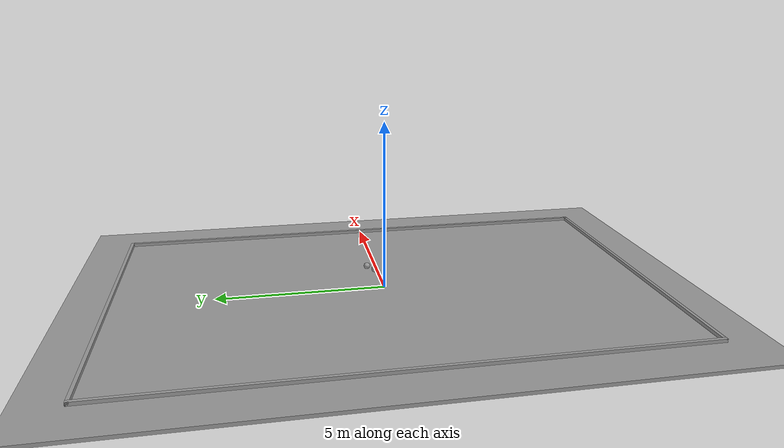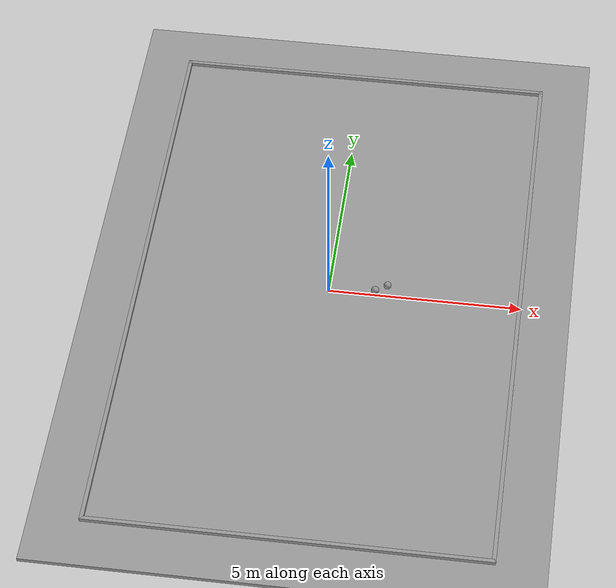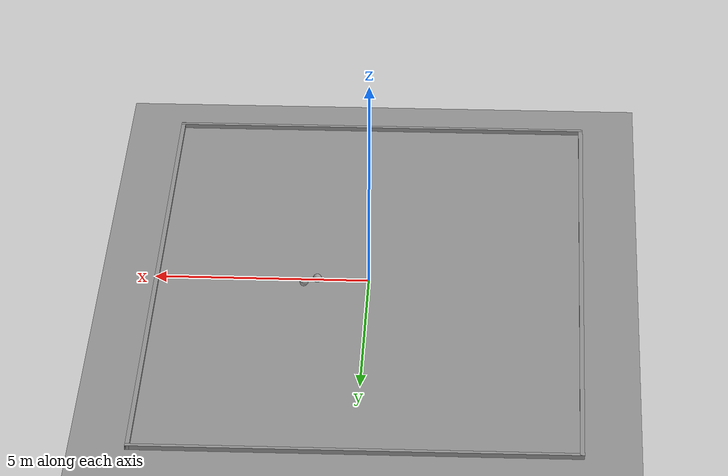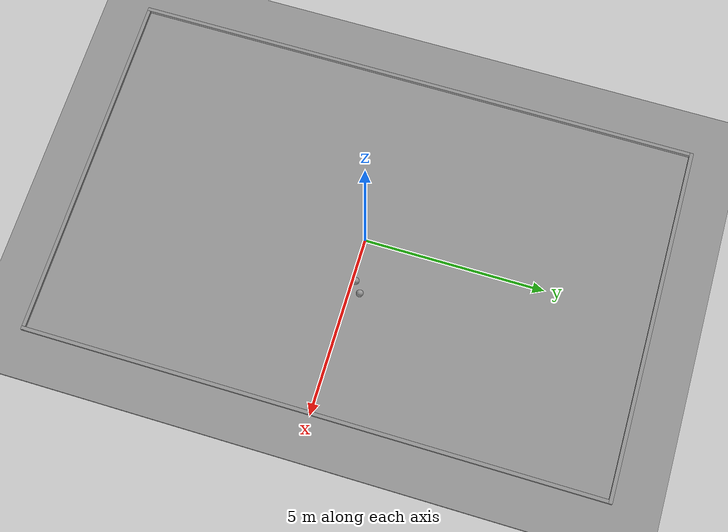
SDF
<sdf version='1.5'>
  <world name='room4'>
    <light name='sun' type='directional'>
      <cast_shadows>1</cast_shadows>
      <pose frame=''>0 0 10 0 -0 0</pose>
      <diffuse>0.8 0.8 0.8 1</diffuse>
      <specular>0.2 0.2 0.2 1</specular>
      <attenuation>
        <range>1000</range>
        <constant>0.9</constant>
        <linear>0.01</linear>
        <quadratic>0.001</quadratic>
      </attenuation>
      <direction>-0.5 0.1 -0.9</direction>
    </light>
    <physics name='default_physics' default='0' type='ode'>
      <max_step_size>0.001</max_step_size>
      <real_time_factor>1</real_time_factor>
      <real_time_update_rate>1000</real_time_update_rate>
      <gravity>0 0 -9.8</gravity>
      <magnetic_field>5.5645e-06 2.28758e-05 -4.23884e-05</magnetic_field>
    </physics>
    <scene>
      <ambient>0.4 0.4 0.4 1</ambient>
      <background>0.7 0.7 0.7 1</background>
      <shadows>1</shadows>
    </scene>
    <model name='floor'>
      <pose frame=''>0 0 -0.05 0 0 0</pose>
      <static>1</static>
      <link name='link'>
        <inertial>
          <mass>1</mass>
          <inertia>
            <ixx>1</ixx>
            <ixy>0</ixy>
            <ixz>0</ixz>
            <iyy>1</iyy>
            <iyz>0</iyz>
            <izz>1</izz>
          </inertia>
        </inertial>
        <collision name='collision'>
          <geometry>
            <box>
              <size>200 200 0.1</size>
            </box>
          </geometry>
          <max_contacts>10</max_contacts>
          <surface>
            <contact>
              <ode/>
            </contact>
            <bounce/>
            <friction>
              <ode/>
            </friction>
          </surface>
        </collision>
        <visual name='visual'>
          <geometry>
            <box>
              <size>200 200 0.1</size>
            </box>
          </geometry>
          <material>
            <script>
              <uri>file://media/materials/scripts/gazebo.material</uri>
              <name>Gazebo/Grey</name>
            </script>
          </material>
        </visual>
        <self_collide>0</self_collide>
        <kinematic>0</kinematic>
        <gravity>0</gravity>
      </link>
    </model>
    <model name='wall1'>
      <pose frame=''>-4.95 0 0.05 0 0 0</pose>
      <static>1</static>
      <link name='link'>
        <inertial>
          <mass>1</mass>
          <inertia>
            <ixx>1</ixx>
            <ixy>0</ixy>
            <ixz>0</ixz>
            <iyy>1</iyy>
            <iyz>0</iyz>
            <izz>1</izz>
          </inertia>
        </inertial>
        <collision name='collision'>
          <geometry>
            <box>
              <size>0.1 16 0.1</size>
            </box>
          </geometry>
          <max_contacts>10</max_contacts>
          <surface>
            <contact>
              <ode/>
            </contact>
            <bounce/>
            <friction>
              <ode/>
            </friction>
          </surface>
        </collision>
        <visual name='visual'>
          <geometry>
            <box>
              <size>0.1 16 0.1</size>
            </box>
          </geometry>
          <material>
            <script>
              <uri>file://media/materials/scripts/gazebo.material</uri>
              <name>Gazebo/Grey</name>
            </script>
          </material>
        </visual>
        <self_collide>0</self_collide>
        <kinematic>0</kinematic>
        <gravity>0</gravity>
      </link>
    </model>
    <model name='wall2'>
      <pose frame=''>0 7.95 0.05 0 0 0</pose>
      <static>1</static>
      <link name='link'>
        <inertial>
          <mass>1</mass>
          <inertia>
            <ixx>1</ixx>
            <ixy>0</ixy>
            <ixz>0</ixz>
            <iyy>1</iyy>
            <iyz>0</iyz>
            <izz>1</izz>
          </inertia>
        </inertial>
        <collision name='collision'>
          <geometry>
            <box>
              <size>10 0.1 0.1</size>
            </box>
          </geometry>
          <max_contacts>10</max_contacts>
          <surface>
            <contact>
              <ode/>
            </contact>
            <bounce/>
            <friction>
              <ode/>
            </friction>
          </surface>
        </collision>
        <visual name='visual'>
          <geometry>
            <box>
              <size>10 0.1 0.1</size>
            </box>
          </geometry>
          <material>
            <script>
              <uri>file://media/materials/scripts/gazebo.material</uri>
              <name>Gazebo/Grey</name>
            </script>
          </material>
        </visual>
        <self_collide>0</self_collide>
        <kinematic>0</kinematic>
        <gravity>0</gravity>
      </link>
    </model>
    <model name='wall3'>
      <pose frame=''>4.95 0 0.05 0 0 0</pose>
      <static>1</static>
      <link name='link'>
        <inertial>
          <mass>1</mass>
          <inertia>
            <ixx>1</ixx>
            <ixy>0</ixy>
            <ixz>0</ixz>
            <iyy>1</iyy>
            <iyz>0</iyz>
            <izz>1</izz>
          </inertia>
        </inertial>
        <collision name='collision'>
          <geometry>
            <box>
              <size>0.1 16 0.1</size>
            </box>
          </geometry>
          <max_contacts>10</max_contacts>
          <surface>
            <contact>
              <ode/>
            </contact>
            <bounce/>
            <friction>
              <ode/>
            </friction>
          </surface>
        </collision>
        <visual name='visual'>
          <geometry>
            <box>
              <size>0.1 16 0.1</size>
            </box>
          </geometry>
          <material>
            <script>
              <uri>file://media/materials/scripts/gazebo.material</uri>
              <name>Gazebo/Grey</name>
            </script>
          </material>
        </visual>
        <self_collide>0</self_collide>
        <kinematic>0</kinematic>
        <gravity>0</gravity>
      </link>
    </model>
    <model name='wall4'>
      <pose frame=''>0 -7.95 0.05 0 0 0</pose>
      <static>1</static>
      <link name='link'>
        <inertial>
          <mass>1</mass>
          <inertia>
            <ixx>1</ixx>
            <ixy>0</ixy>
            <ixz>0</ixz>
            <iyy>1</iyy>
            <iyz>0</iyz>
            <izz>1</izz>
          </inertia>
        </inertial>
        <collision name='collision'>
          <geometry>
            <box>
              <size>10 0.1 0.1</size>
            </box>
          </geometry>
          <max_contacts>10</max_contacts>
          <surface>
            <contact>
              <ode/>
            </contact>
            <bounce/>
            <friction>
              <ode/>
            </friction>
          </surface>
        </collision>
        <visual name='visual'>
          <geometry>
            <box>
              <size>10 0.1 0.1</size>
            </box>
          </geometry>
          <material>
            <script>
              <uri>file://media/materials/scripts/gazebo.material</uri>
              <name>Gazebo/Grey</name>
            </script>
          </material>
        </visual>
        <self_collide>0</self_collide>
        <kinematic>0</kinematic>
        <gravity>0</gravity>
      </link>
    </model>
    <model name='sphereFloor1'>
      <pose frame=''>1.2 0.1 0.1 0 0 0</pose>
      <static>1</static>
      <link name='link'>
        <inertial>
          <mass>1</mass>
          <inertia>
            <ixx>1</ixx>
            <ixy>0</ixy>
            <ixz>0</ixz>
            <iyy>1</iyy>
            <iyz>0</iyz>
            <izz>1</izz>
          </inertia>
        </inertial>
        <collision name='collision'>
          <geometry>
            <sphere>
              <radius>0.1</radius>
            </sphere>
          </geometry>
          <max_contacts>10</max_contacts>
          <surface>
            <contact>
              <ode/>
            </contact>
            <bounce/>
            <friction>
              <ode/>
            </friction>
          </surface>
        </collision>
        <visual name='visual'>
          <geometry>
            <sphere>
              <radius>0.1</radius>
            </sphere>
          </geometry>
          <material>
            <script>
              <uri>file://media/materials/scripts/gazebo.material</uri>
              <name>Gazebo/Grey</name>
            </script>
          </material>
        </visual>
        <self_collide>0</self_collide>
        <kinematic>0</kinematic>
        <gravity>0</gravity>
      </link>
    </model>
    <model name='sphereFloor1'>
      <pose frame=''>1.5 0.3 0.1 0 0 0</pose>
      <static>1</static>
      <link name='link'>
        <inertial>
          <mass>1</mass>
          <inertia>
            <ixx>1</ixx>
            <ixy>0</ixy>
            <ixz>0</ixz>
            <iyy>1</iyy>
            <iyz>0</iyz>
            <izz>1</izz>
          </inertia>
        </inertial>
        <collision name='collision'>
          <geometry>
            <sphere>
              <radius>0.1</radius>
            </sphere>
          </geometry>
          <max_contacts>10</max_contacts>
          <surface>
            <contact>
              <ode/>
            </contact>
            <bounce/>
            <friction>
              <ode/>
            </friction>
          </surface>
        </collision>
        <visual name='visual'>
          <geometry>
            <sphere>
              <radius>0.1</radius>
            </sphere>
          </geometry>
          <material>
            <script>
              <uri>file://media/materials/scripts/gazebo.material</uri>
              <name>Gazebo/Grey</name>
            </script>
          </material>
        </visual>
        <self_collide>0</self_collide>
        <kinematic>0</kinematic>
        <gravity>0</gravity>
      </link>
    </model>
  </world>
</sdf>
